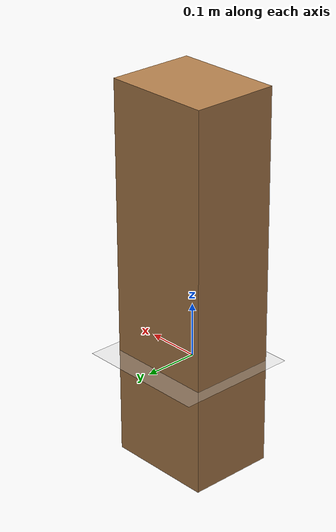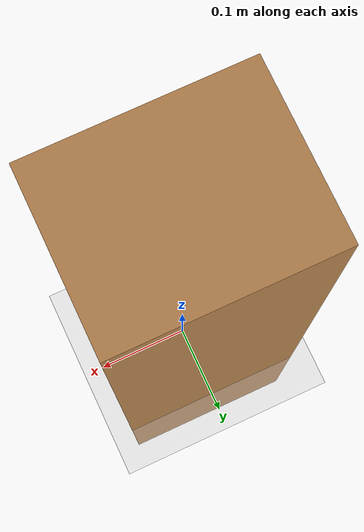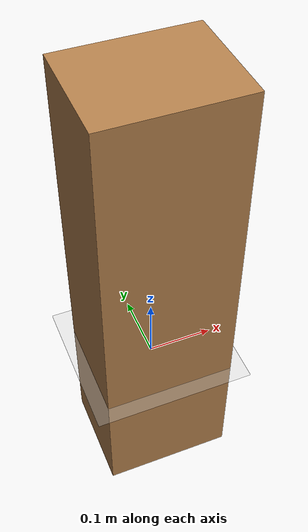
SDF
<?xml version="1.0" ?>
<sdf version="1.5">
  <world name="default">
    <include><uri>model://sun</uri></include>

    <model name="ground_plane">
      <static>true</static>
      <link name="link">
        <collision name="collision">
          <geometry>
            <plane><normal>0 0 1</normal><size>100 100</size></plane>
          </geometry>
          <surface>
            <friction>
              <ode>
                <mu>0.7</mu>
                <mu2>0.7</mu2>
              </ode>
            </friction>
            <contact>
              <ode>
                <kp>50000</kp>
                <kd>50</kd>
                <max_vel>0.5</max_vel>
                <min_depth>0.001</min_depth>
              </ode>
            </contact>
          </surface>
        </collision>
        <visual name="visual">
          <geometry>
            <plane><normal>0 0 1</normal><size>100 100</size></plane>
          </geometry>
          <material>
            <script><uri>file://media/materials/scripts/gazebo.material</uri><name>Gazebo/Grey</name></script>
          </material>
        </visual>
      </link>
    </model>

    <model name="support_stand">
      <static>true</static>
      <pose>0 0 0.15 0 0 0</pose>
      <link name="link">
        <collision name="collision">
          <geometry><box><size>0.2 0.16 0.7</size></box></geometry>
          <surface>
            <friction>
              <ode>
                <mu>0.8</mu>
                <mu2>0.8</mu2>
              </ode>
            </friction>
            <contact>
              <ode>
                <kp>100000</kp>
                <kd>100</kd>
                <max_vel>1.0</max_vel>
                <min_depth>0.003</min_depth>
              </ode>
            </contact>
          </surface>
        </collision>
        <visual name="visual">
          <geometry><box><size>0.2 0.16 0.7 </size></box></geometry>
          <material>
            <script><uri>file://media/materials/scripts/gazebo.material</uri><name>Gazebo/Wood</name></script>
          </material>
        </visual>
      </link>
    </model>

    <physics type="ode">
      <max_step_size>0.001</max_step_size>
      <real_time_update_rate>1000</real_time_update_rate>

      <ode>
        <solver>
          <type>quick</type>
          <iters>100</iters>
          <sor>1.3</sor>
        </solver>

        <constraints>
          <cfm>1e-5</cfm>
          <erp>0.2</erp>
          <contact_max_correcting_vel>1.0</contact_max_correcting_vel>
          <contact_surface_layer>0.003</contact_surface_layer>
        </constraints>
      </ode>
    </physics>
  </world>
</sdf>
